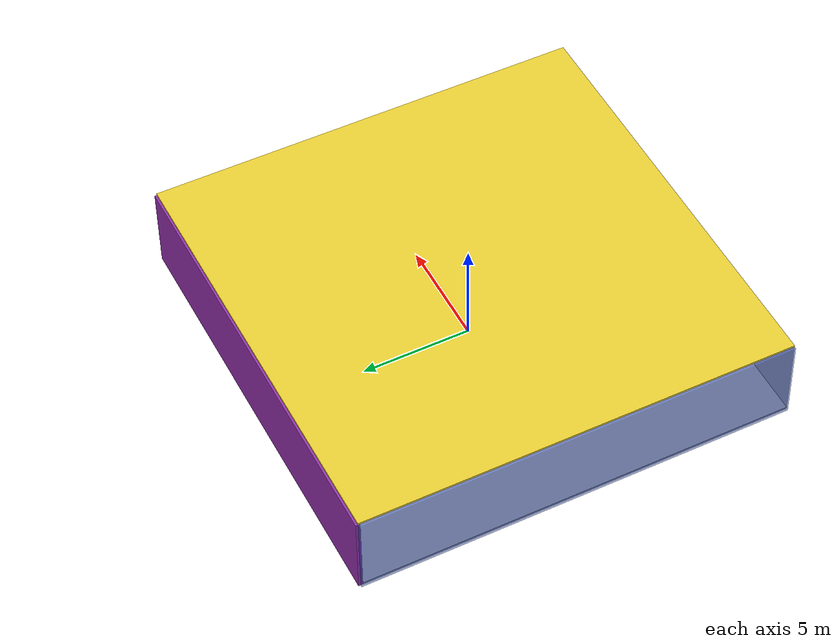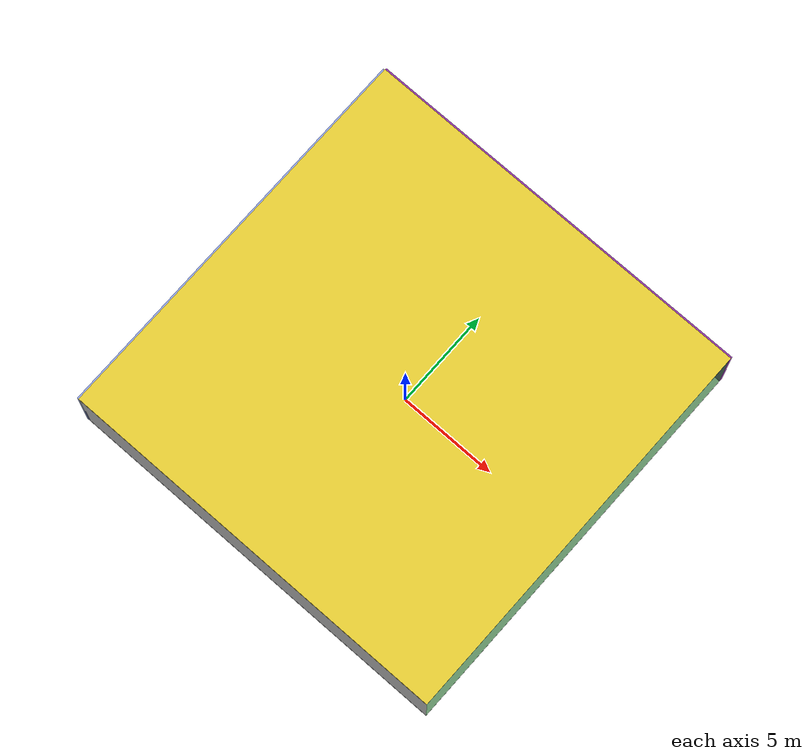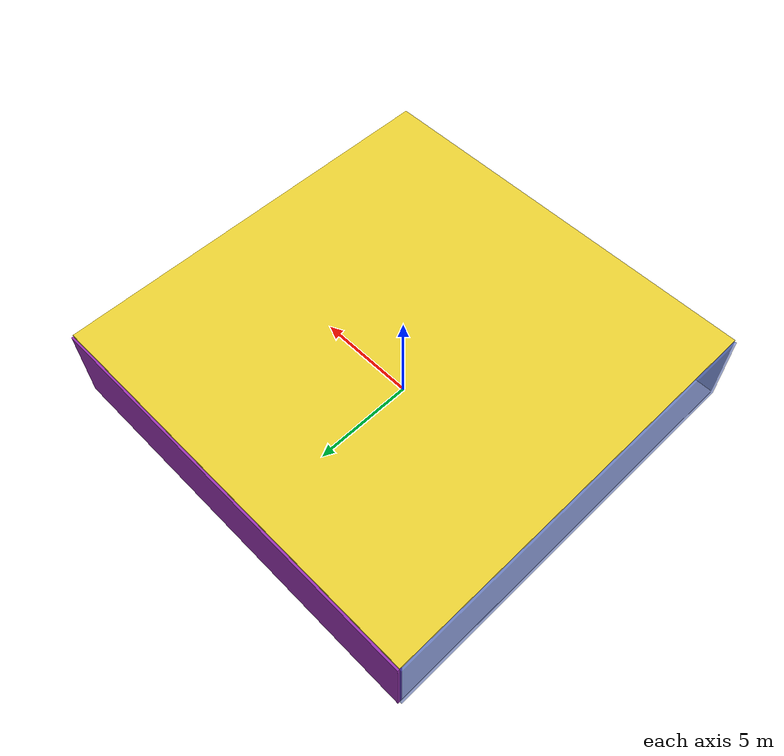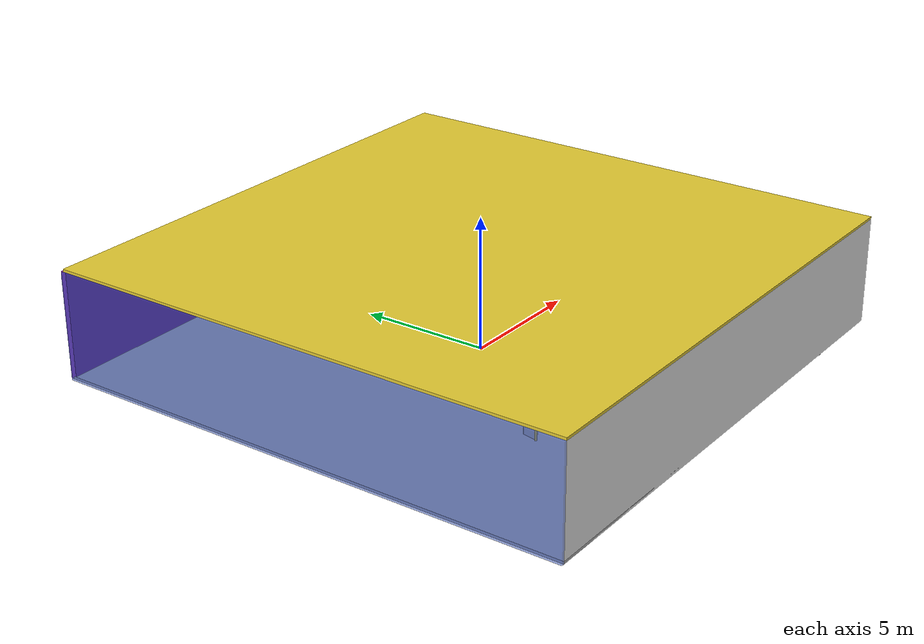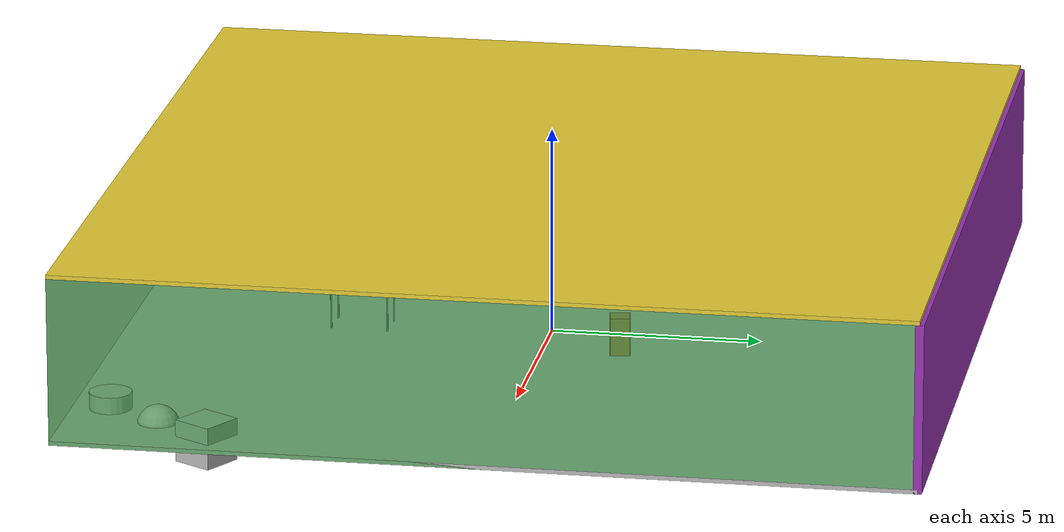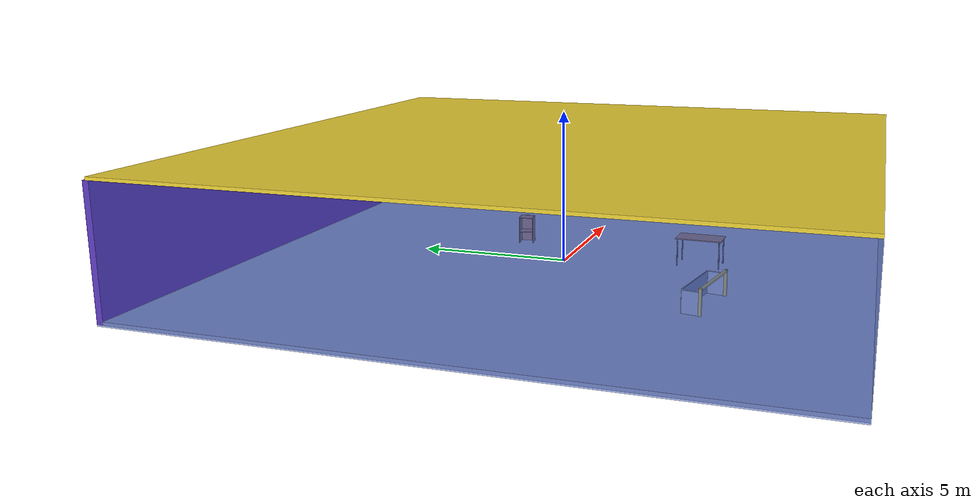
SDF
<sdf version="1.4">
 <world name="default">
  <physics type="ode">
   <max_step_size>0.001</max_step_size>
   <real_time_factor>1</real_time_factor>
   <real_time_update_rate>1000</real_time_update_rate>
   <gravity>0 0 -9.8</gravity>
  </physics>
  <scene><ambient>0.4 0.4 0.4 1</ambient><background>0.7 0.7 0.7 1</background><shadows>1</shadows></scene>
  <model name="Surrounding">
   <static>1</static>
   <link name="Ceiling">
    <collision name="Ceiling_Collision"><geometry><box><size>20 20 0.1</size></box></geometry></collision>
    <visual name="Ceiling_Visual">
     <geometry><box><size>20 20 0.1</size></box></geometry>
     <material>
      <script><uri>file://media/materials/scripts/gazebo.material</uri><name>Gazebo/ZincYellow</name></script>
     </material>
    </visual>
    <pose>0 0 4.05 0 0 0</pose>
   </link>
   <link name="Wall_South">
    <collision name="Wall_South_Collision">
     <geometry><box><size>20 0 4</size></box></geometry>
     <pose>0 0 2 0 -0 0</pose>
    </collision>
    <visual name="Wall_South_Visual">
     <pose>0 0 2 0 -0 0</pose>
     <geometry><box><size>20 0 4</size></box></geometry>
     <material>
      <script><uri>file://media/materials/scripts/gazebo.material</uri><name>Gazebo/White</name></script>
     </material>
    </visual>
    <velocity_decay><linear>0</linear><angular>0</angular></velocity_decay>
    <pose>0 -10 0 0 -0 0</pose>
   </link>
   <link name="Wall_East">
    <collision name="Wall_21_Collision">
     <geometry><box><size>20 0 4</size></box></geometry>
     <pose>0 0 2 0 -0 0</pose>
    </collision>
    <visual name="Wall_21_Visual">
     <pose>0 0 2 0 -0 0</pose>
     <geometry><box><size>20 0 4</size></box></geometry>
     <material>
      <script><uri>file://media/materials/scripts/gazebo.material</uri><name>Gazebo/GreenTransparent</name></script>
     </material>
    </visual>
    <velocity_decay><linear>0</linear><angular>0</angular></velocity_decay>
    <pose>10 0 0 0 -0 1.5708</pose>
   </link>
   <link name="Wall_North">
    <collision name="Wall_22_Collision">
     <geometry><box><size>20 0.2 4</size></box></geometry>
     <pose>0 0 2 0 -0 0</pose>
    </collision>
    <visual name="Wall_22_Visual">
     <pose>0 0 2 0 -0 0</pose>
     <geometry><box><size>20 0.2 4</size></box></geometry>
     <material>
      <script><uri>file://media/materials/scripts/gazebo.material</uri><name>Gazebo/Purple</name></script>
     </material>
    </visual>
    <velocity_decay><linear>0</linear><angular>0</angular></velocity_decay>
    <pose>0 10 0 0 -0 0</pose>
   </link>
   <link name="Wall_West">
    <collision name="Wall_23_Collision">
     <geometry><box><size>20 0.2 4</size></box></geometry>
     <pose>0 0 2 0 -0 0</pose>
    </collision>
    <visual name="Wall_23_Visual">
     <pose>0 0 2 0 -0 0</pose>
     <geometry><box><size>20 0.2 4</size></box></geometry>
     <material>
      <script><uri>file://media/materials/scripts/gazebo.material</uri><name>Gazebo/BlueTransparent</name></script>
     </material>
    </visual>
    <velocity_decay><linear>0</linear><angular>0</angular></velocity_decay>
    <pose>-10 0 0 0 0 -1.5708</pose>
   </link>
   <link name="Ground_link">
    <collision name="collision">
     <pose>0 0 .05 0 -0 0</pose>
     <geometry><box><size>20 20 0.1</size></box></geometry>
    </collision>
    <visual name="visual">
     <pose>0 0 .05 0 -0 0</pose>
     <geometry><box><size>20 20 0.1</size></box></geometry>
     <material>
      <script><uri>file://media/materials/scripts/gazebo.material</uri><name>Gazebo/JointAnchor</name></script>
     </material>
    </visual>
   </link>
   <static>1</static>
  </model>
  <spherical_coordinates>
   <surface_model>EARTH_WGS84</surface_model>
   <latitude_deg>0</latitude_deg>
   <longitude_deg>0</longitude_deg>
   <elevation>0</elevation>
   <heading_deg>0</heading_deg>
  </spherical_coordinates>
  <light name="lightball_0" type="diffuse">
   <diffuse>0.8 0.8 0.8 1</diffuse>
   <specular>0.2 0.2 0.2 1</specular>
   <attenuation>
    <range>100</range>
    <constant>0.7</constant>
    <linear>0.01</linear>
    <quadratic>0.001</quadratic>
   </attenuation>
   <direction>-0.5 0.1 -0.9</direction>
   <pose>3.36343737013 7.07587456329 2.97717688096 0 0 0</pose>
  </light>
  <light name="lightball_1" type="diffuse">
   <diffuse>0.8 0.8 0.8 1</diffuse>
   <specular>0.2 0.2 0.2 1</specular>
   <attenuation>
    <range>100</range>
    <constant>0.7</constant>
    <linear>0.01</linear>
    <quadratic>0.001</quadratic>
   </attenuation>
   <direction>-0.5 0.1 -0.9</direction>
   <pose>2.90841415198 2.19104052026 0.901039812836 0 0 0</pose>
  </light>
  <light name="lightball_2" type="diffuse">
   <diffuse>0.8 0.8 0.8 1</diffuse>
   <specular>0.2 0.2 0.2 1</specular>
   <attenuation>
    <range>100</range>
    <constant>0.7</constant>
    <linear>0.01</linear>
    <quadratic>0.001</quadratic>
   </attenuation>
   <direction>-0.5 0.1 -0.9</direction>
   <pose>6.318900267 2.31418995451 2.12762019301 0 0 0</pose>
  </light>
  <light name="lightball_3" type="diffuse">
   <diffuse>0.8 0.8 0.8 1</diffuse>
   <specular>0.2 0.2 0.2 1</specular>
   <attenuation>
    <range>100</range>
    <constant>0.7</constant>
    <linear>0.01</linear>
    <quadratic>0.001</quadratic>
   </attenuation>
   <direction>-0.5 0.1 -0.9</direction>
   <pose>2.43963749173 3.48116119983 3.10191019678 0 0 0</pose>
  </light>
  <light name="lightball_4" type="diffuse">
   <diffuse>0.8 0.8 0.8 1</diffuse>
   <specular>0.2 0.2 0.2 1</specular>
   <attenuation>
    <range>100</range>
    <constant>0.7</constant>
    <linear>0.01</linear>
    <quadratic>0.001</quadratic>
   </attenuation>
   <direction>-0.5 0.1 -0.9</direction>
   <pose>-2.98070800961 2.52495048028 1.47633555549 0 0 0</pose>
  </light>
  <light name="lightball_5" type="diffuse">
   <diffuse>0.8 0.8 0.8 1</diffuse>
   <specular>0.2 0.2 0.2 1</specular>
   <attenuation>
    <range>100</range>
    <constant>0.7</constant>
    <linear>0.01</linear>
    <quadratic>0.001</quadratic>
   </attenuation>
   <direction>-0.5 0.1 -0.9</direction>
   <pose>1.5751357492 8.43047976836 2.71431341899 0 0 0</pose>
  </light>
  <light name="lightball_6" type="diffuse">
   <diffuse>0.8 0.8 0.8 1</diffuse>
   <specular>0.2 0.2 0.2 1</specular>
   <attenuation>
    <range>100</range>
    <constant>0.7</constant>
    <linear>0.01</linear>
    <quadratic>0.001</quadratic>
   </attenuation>
   <direction>-0.5 0.1 -0.9</direction>
   <pose>1.87553257326 9.35573542804 2.46411169298 0 0 0</pose>
  </light>
  <include>
   <uri>model://robocup_3Dsim_goal</uri>
   <pose>-3.53295793114 -5.58195646694 0 0 0 1.38909773469</pose>
  </include>
  <include><uri>model://table</uri><pose>0.598688576485 -4.47842950162 0 0 0 1.54153230753</pose></include>
  <include><uri>model://cabinet</uri><pose>1.63760898949 1.89134257442 0 0 0 0.152893523469</pose></include>
  <include>
   <uri>model://textured_shapes</uri>
   <pose>8.2390152207 -7.81473592079 0 0 0 2.60340755401</pose>
  </include>
 </world>
</sdf>

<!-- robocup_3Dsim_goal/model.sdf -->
<sdf version="1.5">
  <model name="robocup_3d_goal">
    <static>true</static>
    <link name="left_post">
      <pose>0 1.05 0.45 0 0 0</pose>
      <collision name="collision">
        <geometry>
          <cylinder>
            <radius>0.05</radius>
            <length>0.9</length>
          </cylinder>
        </geometry>
      </collision>
      <visual name="visual">
        <geometry>
          <cylinder>
            <radius>0.05</radius>
            <length>0.9</length>
          </cylinder>
        </geometry>
        <material>
          <script>
            <uri>file://media/materials/scripts/gazebo.material</uri>
            <name>Gazebo/ZincYellow</name>
          </script>
        </material>
      </visual>
    </link>
    <link name="left_support_horiz_lower">
      <pose>0.30 1.05 0.01 0 0 0</pose>
      <collision name="collision">
        <geometry>
          <box>
            <size>0.50 0.02 0.02</size>
          </box>
        </geometry>
      </collision>
      <visual name="visual">
        <geometry>
          <box>
            <size>0.50 0.02 0.02</size>
          </box>
        </geometry>
        <material>
          <script>
            <uri>file://media/materials/scripts/gazebo.material</uri>
            <name>Gazebo/White</name>
          </script>
        </material>
      </visual>
    </link>
    <link name="left_support_horiz_upper">
      <pose>0.30 1.05 0.79 0 0 0</pose>
      <collision name="collision">
        <geometry>
          <box>
            <size>0.50 0.02 0.02</size>
          </box>
        </geometry>
      </collision>
      <visual name="visual">
        <geometry>
          <box>
            <size>0.50 0.02 0.02</size>
          </box>
        </geometry>
        <material>
          <script>
            <uri>file://media/materials/scripts/gazebo.material</uri>
            <name>Gazebo/White</name>
          </script>
        </material>
      </visual>
    </link>
    <link name="left_support_vertical">
      <pose>0.56 1.05 0.4 0 1.5708 0</pose>
      <collision name="collision">
        <geometry>
          <box>
            <size>0.80 0.02 0.02</size>
          </box>
        </geometry>
      </collision>
      <visual name="visual">
        <geometry>
          <box>
            <size>0.80 0.02 0.02</size>
          </box>
        </geometry>
        <material>
          <script>
            <uri>file://media/materials/scripts/gazebo.material</uri>
            <name>Gazebo/White</name>
          </script>
        </material>
      </visual>
    </link>
    <link name="right_support_horiz_lower">
      <pose>0.30 -1.05 0.01 0 0 0</pose>
      <collision name="collision">
        <geometry>
          <box>
            <size>0.50 0.02 0.02</size>
          </box>
        </geometry>
      </collision>
      <visual name="visual">
        <geometry>
          <box>
            <size>0.50 0.02 0.02</size>
          </box>
        </geometry>
        <material>
          <script>
            <uri>file://media/materials/scripts/gazebo.material</uri>
            <name>Gazebo/White</name>
          </script>
        </material>
      </visual>
    </link>
    <link name="right_support_horiz_upper">
      <pose>0.30 -1.05 0.79 0 0 0</pose>
      <collision name="collision">
        <geometry>
          <box>
            <size>0.50 0.02 0.02</size>
          </box>
        </geometry>
      </collision>
      <visual name="visual">
        <geometry>
          <box>
            <size>0.50 0.02 0.02</size>
          </box>
        </geometry>
        <material>
          <script>
            <uri>file://media/materials/scripts/gazebo.material</uri>
            <name>Gazebo/White</name>
          </script>
        </material>
      </visual>
    </link>
    <link name="right_support_vertical">
      <pose>0.56 -1.05 0.4 0 1.5708 0</pose>
      <collision name="collision">
        <geometry>
          <box>
            <size>0.80 0.02 0.02</size>
          </box>
        </geometry>
      </collision>
      <visual name="visual">
        <geometry>
          <box>
            <size>0.80 0.02 0.02</size>
          </box>
        </geometry>
        <material>
          <script>
            <uri>file://media/materials/scripts/gazebo.material</uri>
            <name>Gazebo/White</name>
          </script>
        </material>
      </visual>
    </link>
    <link name="center_support_horiz_lower">
      <pose>0.56 0 0.01 0 1.5708 0</pose>
      <collision name="collision">
        <geometry>
          <box>
            <size>0.02 2.08 0.02</size>
          </box>
        </geometry>
      </collision>
      <visual name="visual">
        <geometry>
          <box>
            <size>0.02 2.08 0.02</size>
          </box>
        </geometry>
        <material>
          <script>
            <uri>file://media/materials/scripts/gazebo.material</uri>
            <name>Gazebo/White</name>
          </script>
        </material>
      </visual>
    </link>
    <link name="center_support_horiz_upper">
      <pose>0.56 0 0.79 0 1.5708 0</pose>
      <collision name="collision">
        <geometry>
          <box>
            <size>0.02 2.08 0.02</size>
          </box>
        </geometry>
      </collision>
      <visual name="visual">
        <geometry>
          <box>
            <size>0.02 2.08 0.02</size>
          </box>
        </geometry>
        <material>
          <script>
            <uri>file://media/materials/scripts/gazebo.material</uri>
            <name>Gazebo/White</name>
          </script>
        </material>
      </visual>
    </link>
    <link name="right_post">
      <pose>0 -1.05 0.45 0 0 0</pose>
      <collision name="collision">
        <geometry>
          <cylinder>
            <radius>0.05</radius>
            <length>0.9</length>
          </cylinder>
        </geometry>
      </collision>
      <visual name="visual">
        <geometry>
          <cylinder>
            <radius>0.05</radius>
            <length>0.9</length>
          </cylinder>
        </geometry>
        <material>
          <script>
            <uri>file://media/materials/scripts/gazebo.material</uri>
            <name>Gazebo/ZincYellow</name>
          </script>
        </material>
      </visual>
    </link>
    <link name="crossbar">
      <pose>0 0 0.85 1.57 1.57 0</pose>
      <collision name="collision">
        <geometry>
          <cylinder>
            <radius>0.05</radius>
            <length>2.0</length>
          </cylinder>
        </geometry>
      </collision>
      <visual name="visual">
        <geometry>
          <cylinder>
            <radius>0.05</radius>
            <length>2.0</length>
          </cylinder>
        </geometry>
        <material>
          <script>
            <uri>file://media/materials/scripts/gazebo.material</uri>
            <name>Gazebo/ZincYellow</name>
          </script>
        </material>
      </visual>
    </link>
    <link name="center_net">
      <pose>0.56 0 0.40 0 0 0</pose>
      <collision name="collision">
        <geometry>
          <box>
            <size>0.01 2.1 0.80</size>
          </box>
        </geometry>
      </collision>
      <visual name="visual">
        <geometry>
          <box>
            <size>0.01 2.1 0.80</size>
          </box>
        </geometry>
        <material>
          <script>
            <uri>model://../model_source/models/robocup09_spl_field/materials/scripts/</uri>
            <uri>model://../model_source/models/robocup09_spl_field/materials/textures/</uri>
            <name>RoboCup/Net</name>
          </script>
        </material>
      </visual>
    </link>
    <link name="left_net">
      <pose>0.30 1.05 0.40 0 0 0</pose>
      <collision name="collision">
        <geometry>
          <box>
            <size>0.50 0.01 0.76</size>
          </box>
        </geometry>
      </collision>
      <visual name="visual">
        <geometry>
          <box>
            <size>0.50 0.01 0.76</size>
          </box>
        </geometry>
        <material>
          <script>
            <uri>model://../model_source/models/robocup09_spl_field/materials/scripts/</uri>
            <uri>model://../model_source/models/robocup09_spl_field/materials/textures/</uri>
            <name>RoboCup/Net</name>
          </script>
        </material>
      </visual>
    </link>
    <link name="right_net">
      <pose>0.30 -1.05 0.40 0 0 0</pose>
      <collision name="collision">
        <geometry>
          <box>
            <size>0.50 0.01 0.76</size>
          </box>
        </geometry>
      </collision>
      <visual name="visual">
        <geometry>
          <box>
            <size>0.50 0.01 0.76</size>
          </box>
        </geometry>
        <material>
          <script>
            <uri>model://../model_source/models/robocup09_spl_field/materials/scripts/</uri>
            <uri>model://../model_source/models/robocup09_spl_field/materials/textures/</uri>
            <name>RoboCup/Net</name>
          </script>
        </material>
      </visual>
    </link>
  </model>
</sdf>

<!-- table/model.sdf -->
<sdf version="1.5">
  <model name="table">
    <static>true</static>
    <link name="link">
      <collision name="surface">
        <pose>0 0 1.0 0 0 0</pose>
        <geometry>
          <box>
            <size>1.5 0.8 0.03</size>
          </box>
        </geometry>
        <surface>
          <friction>
            <ode>
              <mu>0.6</mu>
              <mu2>0.6</mu2>
            </ode>
          </friction>
        </surface>
      </collision>
      <visual name="visual1">
        <pose>0 0 1.0 0 0 0</pose>
        <geometry>
          <box>
            <size>1.5 0.8 0.03</size>
          </box>
        </geometry>
        <material>
          <script>
            <uri>model://media/materials/scripts/gazebo.material</uri>
            <name>Gazebo/Wood</name>
          </script>
        </material>
      </visual>
      <collision name="front_left_leg">
        <pose>0.68 0.38 0.5 0 0 0</pose>
        <geometry>
          <cylinder>
            <radius>0.02</radius>
            <length>1.0</length>
          </cylinder>
        </geometry>
      </collision>
      <visual name="front_left_leg">
        <pose>0.68 0.38 0.5 0 0 0</pose>
        <geometry>
          <cylinder>
            <radius>0.02</radius>
            <length>1.0</length>
          </cylinder>
        </geometry>
        <material>
          <script>
            <uri>model://media/materials/scripts/gazebo.material</uri>
            <name>Gazebo/Grey</name>
          </script>
        </material>
      </visual>
      <collision name="front_right_leg">
        <pose>0.68 -0.38 0.5 0 0 0</pose>
        <geometry>
          <cylinder>
            <radius>0.02</radius>
            <length>1.0</length>
          </cylinder>
        </geometry>
      </collision>
      <visual name="front_right_leg">
        <pose>0.68 -0.38 0.5 0 0 0</pose>
        <geometry>
          <cylinder>
            <radius>0.02</radius>
            <length>1.0</length>
          </cylinder>
        </geometry>
        <material>
          <script>
            <uri>model://media/materials/scripts/gazebo.material</uri>
            <name>Gazebo/Grey</name>
          </script>
        </material>
      </visual>
      <collision name="back_right_leg">
        <pose>-0.68 -0.38 0.5 0 0 0</pose>
        <geometry>
          <cylinder>
            <radius>0.02</radius>
            <length>1.0</length>
          </cylinder>
        </geometry>
      </collision>
      <visual name="back_right_leg">
        <pose>-0.68 -0.38 0.5 0 0 0</pose>
        <geometry>
          <cylinder>
            <radius>0.02</radius>
            <length>1.0</length>
          </cylinder>
        </geometry>
        <material>
          <script>
            <uri>model://media/materials/scripts/gazebo.material</uri>
            <name>Gazebo/Grey</name>
          </script>
        </material>
      </visual>
      <collision name="back_left_leg">
        <pose>-0.68 0.38 0.5 0 0 0</pose>
        <geometry>
          <cylinder>
            <radius>0.02</radius>
            <length>1.0</length>
          </cylinder>
        </geometry>
      </collision>
      <visual name="back_left_leg">
        <pose>-0.68 0.38 0.5 0 0 0</pose>
        <geometry>
          <cylinder>
            <radius>0.02</radius>
            <length>1.0</length>
          </cylinder>
        </geometry>
        <material>
          <script>
            <uri>model://media/materials/scripts/gazebo.material</uri>
            <name>Gazebo/Grey</name>
          </script>
        </material>
      </visual>
    </link>
  </model>
</sdf>

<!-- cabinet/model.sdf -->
<sdf version="1.5">
  <model name="cabinet">
    <static>true</static>
    <link name="cabinet_bottom_plate">
      <inertial>
        <pose>0 0 -1 0 0 0</pose>
        <inertia>
          <ixx>2.050000</ixx>
          <ixy>0</ixy>
          <ixz>0</ixz>
          <iyy>2.050000</iyy>
          <iyz>0</iyz>
          <izz>2.050000</izz>
        </inertia>
        <mass>25.000000</mass>
      </inertial>
      <collision name="cabinet_bottom_plate_geom">
        <pose>0 0 0.010000 0 0 0</pose>
        <geometry>
          <box>
            <size>0.450000 0.450000 0.020000</size>
          </box>
        </geometry>
      </collision>
      <visual name="cabinet_bottom_plate_geom_visual">
        <pose>0 0 0.010000 0 0 0</pose>
        <geometry>
          <box>
            <size>0.450000 0.450000 0.020000</size>
          </box>
        </geometry>
        <material>
          <script>
            <uri>model://media/materials/scripts/gazebo.material</uri>
            <name>Gazebo/Wood</name>
          </script>
        </material>
      </visual>
      <collision name="cabinet_bottom_plate_geom_cabinet_back_plate">
        <pose>0.235000 0 0.510000 0 0 0</pose>
        <geometry>
          <box>
            <size>0.020000 0.450000 1.020000</size>
          </box>
        </geometry>
      </collision>
      <visual name="cabinet_bottom_plate_geom_cabinet_back_plate_visual">
        <pose>0.235000 0 0.510000 0 0 0</pose>
        <geometry>
          <box>
            <size>0.020000 0.450000 1.020000</size>
          </box>
        </geometry>
        <material>
          <script>
            <uri>model://media/materials/scripts/gazebo.material</uri>
            <name>Gazebo/Wood</name>
          </script>
        </material>
      </visual>
      <collision name="cabinet_bottom_plate_geom_cabinet_left_plate">
        <pose>0 0.235000 0.510000 0 0 0</pose>
        <geometry>
          <box>
            <size>0.450000 0.020000 1.020000</size>
          </box>
        </geometry>
      </collision>
      <visual name="cabinet_bottom_plate_geom_cabinet_left_plate_visual">
        <pose>0 0.235000 0.510000 0 0 0</pose>
        <geometry>
          <box>
            <size>0.450000 0.020000 1.020000</size>
          </box>
        </geometry>
        <material>
          <script>
            <uri>model://media/materials/scripts/gazebo.material</uri>
            <name>Gazebo/Wood</name>
          </script>
        </material>
      </visual>
      <collision name="cabinet_bottom_plate_geom_cabinet_middle_plate">
        <pose>0 0 0.510000 0 0 0</pose>
        <geometry>
          <box>
            <size>0.450000 0.450000 0.020000</size>
          </box>
        </geometry>
      </collision>
      <visual name="cabinet_bottom_plate_geom_cabinet_middle_plate_visual">
        <pose>0 0 0.510000 0 0 0</pose>
        <geometry>
          <box>
            <size>0.450000 0.450000 0.020000</size>
          </box>
        </geometry>
        <material>
          <script>
            <uri>model://media/materials/scripts/gazebo.material</uri>
            <name>Gazebo/Wood</name>
          </script>
        </material>
      </visual>
      <collision name="cabinet_bottom_plate_geom_cabinet_right_plate">
        <pose>0 -0.235000 0.510000 0 0 0</pose>
        <geometry>
          <box>
            <size>0.450000 0.020000 1.020000</size>
          </box>
        </geometry>
      </collision>
      <visual name="cabinet_bottom_plate_geom_cabinet_right_plate_visual">
        <pose>0 -0.235000 0.510000 0 0 0</pose>
        <geometry>
          <box>
            <size>0.450000 0.020000 1.020000</size>
          </box>
        </geometry>
        <material>
          <script>
            <uri>model://media/materials/scripts/gazebo.material</uri>
            <name>Gazebo/Wood</name>
          </script>
        </material>
      </visual>
      <collision name="cabinet_bottom_plate_geom_cabinet_top_plate">
        <pose>0 0 1.010000 0 0 0</pose>
        <geometry>
          <box>
            <size>0.450000 0.450000 0.020000</size>
          </box>
        </geometry>
      </collision>
      <visual name="cabinet_bottom_plate_geom_cabinet_top_plate_visual">
        <pose>0 0 1.010000 0 0 0</pose>
        <geometry>
          <box>
            <size>0.450000 0.450000 0.020000</size>
          </box>
        </geometry>
        <material>
          <script>
            <uri>model://media/materials/scripts/gazebo.material</uri>
            <name>Gazebo/Wood</name>
          </script>
        </material>
      </visual>
    </link>
  </model>
</sdf>

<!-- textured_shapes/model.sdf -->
<sdf version="1.6">
  <model name="textured_shapes">
    <pose>0 0 0.5 0 0 0</pose>
    <link name="box">
      <pose>0 -1.5 0 0 0 0</pose>
      <collision name="collision">
        <geometry>
          <box>
            <size>1 1 1</size>
          </box>
        </geometry>
      </collision>
      <visual name="visual">
        <geometry>
          <box>
            <size>1 1 1</size>
          </box>
        </geometry>
        <material>
          <script>
            <uri>model://../model_source/models/textured_shapes/materials/scripts</uri>
            <uri>model://../model_source/models/textured_shapes/materials/textures</uri>
            <name>TexturedShape/Squares</name>
          </script>
        </material>
      </visual>
    </link>
    <link name="sphere">
      <collision name="collision">
        <geometry>
          <sphere>
            <radius>0.5</radius>
          </sphere>
        </geometry>
      </collision>
      <visual name="visual">
        <geometry>
          <sphere>
            <radius>0.5</radius>
          </sphere>
        </geometry>
        <material>
          <script>
            <uri>model://../model_source/models/textured_shapes/materials/scripts</uri>
            <uri>model://../model_source/models/textured_shapes/materials/textures</uri>
            <name>TexturedShape/Squares</name>
          </script>
        </material>
      </visual>
    </link>
    <link name="cylinder">
      <pose>0 1.5 0 0 0 0</pose>
      <collision name="collision">
        <geometry>
          <cylinder>
            <radius>0.5</radius>
            <length>1</length>
          </cylinder>
        </geometry>
      </collision>
      <visual name="visual">
        <geometry>
          <cylinder>
            <radius>0.5</radius>
            <length>1</length>
          </cylinder>
        </geometry>
        <material>
          <script>
            <uri>model://../model_source/models/textured_shapes/materials/scripts</uri>
            <uri>model://../model_source/models/textured_shapes/materials/textures</uri>
            <name>TexturedShape/Squares</name>
          </script>
        </material>
      </visual>
    </link>
  </model>
</sdf>
